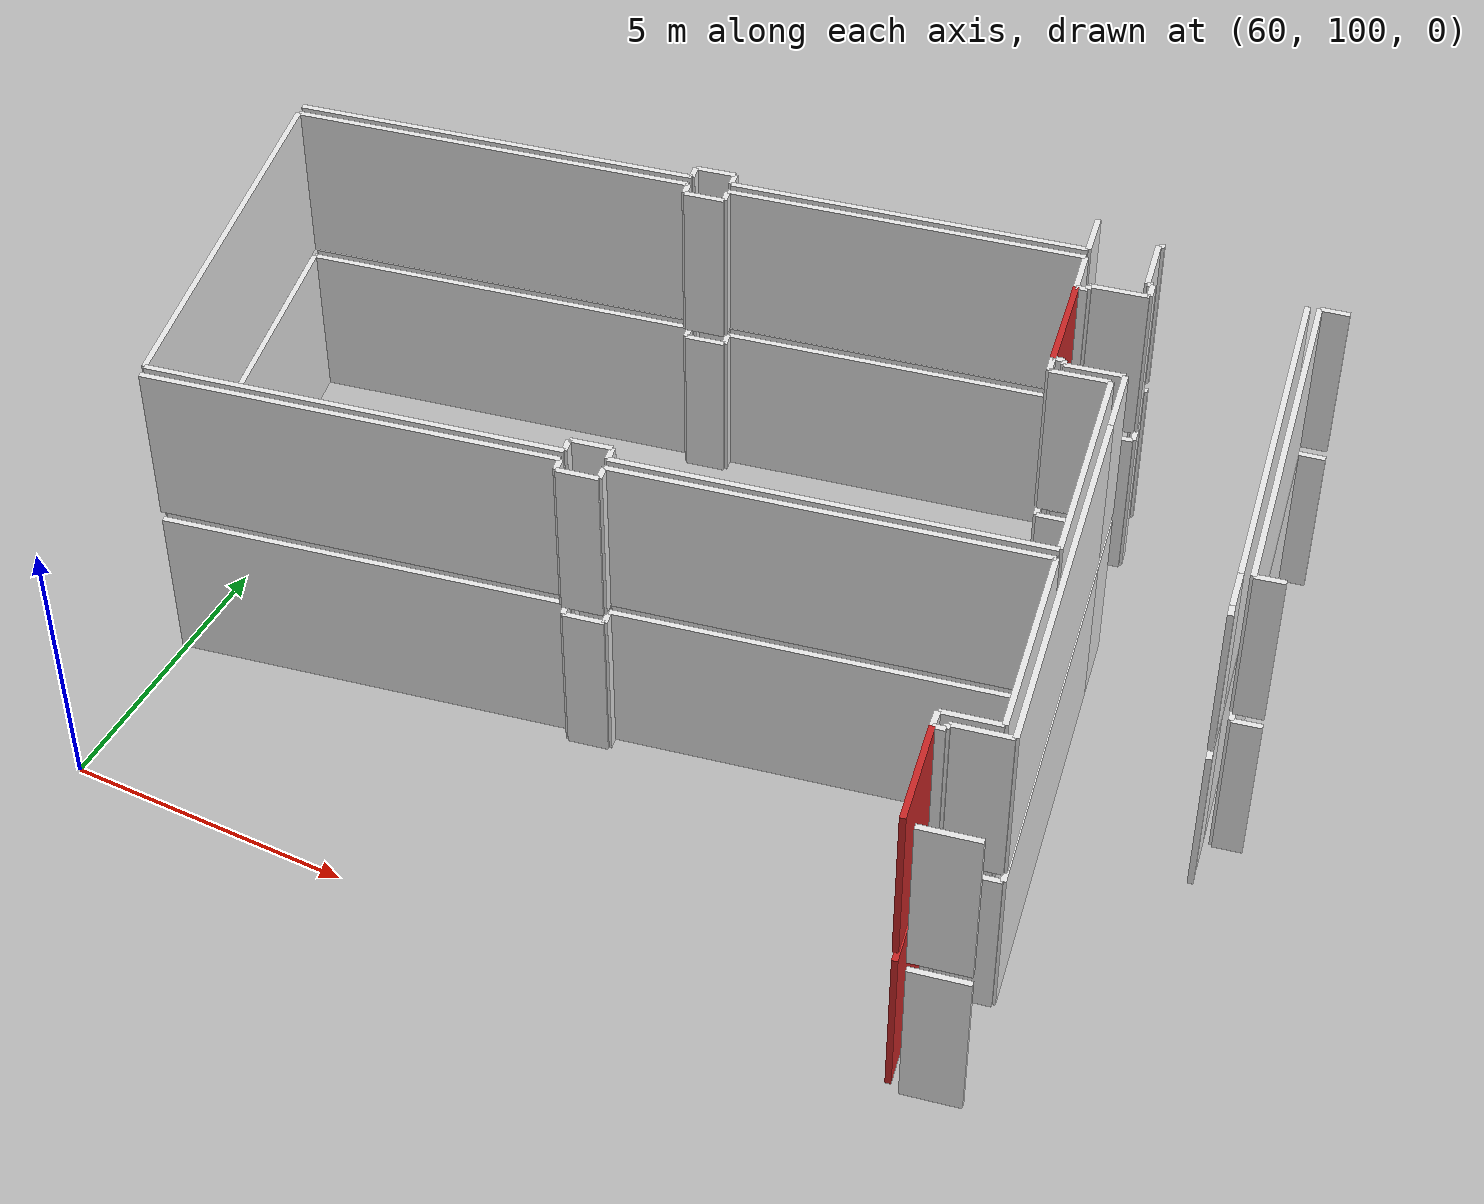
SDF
<sdf version="1.6">
 <world name="default">
  <model name="wall_72.4_111.0_0.0">
   <static>true</static>
   <pose>72.43499999999767 111.04000000003725 1.5 0 0 -1.3744936626731843</pose>
   <link name="link">
    <visual name="visual">
     <geometry><box><size>1.7944637079631676 0.1 3</size></box></geometry>
     <material>
      <script><uri>file://media/materials/scripts/gazebo.material</uri><name>Gazebo/Red</name></script>
     </material>
    </visual>
   </link>
  </model>
  <model name="wall_74.4_101.3_0.0">
   <static>true</static>
   <pose>74.38000000000466 101.26000000000931 1.5 0 0 -1.3690339825092397</pose>
   <link name="link">
    <visual name="visual">
     <geometry><box><size>1.796440926065282 0.1 3</size></box></geometry>
     <material>
      <script><uri>file://media/materials/scripts/gazebo.material</uri><name>Gazebo/Red</name></script>
     </material>
    </visual>
   </link>
  </model>
  <model name="wall_61.9_110.9_0.0">
   <static>true</static>
   <pose>61.945000000006985 110.9000000001397 1.5 0 0 0.1954353271142626</pose>
   <link name="link">
    <visual name="visual">
     <geometry><box><size>7.0033206409232305 0.1 3</size></box></geometry>
     <material>
      <script><uri>file://media/materials/scripts/gazebo.material</uri><name>Gazebo/White</name></script>
     </material>
    </visual>
   </link>
  </model>
  <model name="wall_65.4_111.7_0.0">
   <static>true</static>
   <pose>65.35500000001048 111.69999999995343 1.5 0 0 1.7761917161396261</pose>
   <link name="link">
    <visual name="visual">
     <geometry><box><size>0.24515301320319682 0.1 3</size></box></geometry>
     <material>
      <script><uri>file://media/materials/scripts/gazebo.material</uri><name>Gazebo/White</name></script>
     </material>
    </visual>
   </link>
  </model>
  <model name="wall_65.7_111.9_0.0">
   <static>true</static>
   <pose>65.6700000000128 111.88999999989755 1.5 0 0 0.20304521743943982</pose>
   <link name="link">
    <visual name="visual">
     <geometry><box><size>0.6942621983278424 0.1 3</size></box></geometry>
     <material>
      <script><uri>file://media/materials/scripts/gazebo.material</uri><name>Gazebo/White</name></script>
     </material>
    </visual>
   </link>
  </model>
  <model name="wall_66.0_111.8_0.0">
   <static>true</static>
   <pose>66.03500000000349 111.83499999996275 1.5 0 0 -1.373400766989791</pose>
   <link name="link">
    <visual name="visual">
     <geometry><box><size>0.25495097567735614 0.1 3</size></box></geometry>
     <material>
      <script><uri>file://media/materials/scripts/gazebo.material</uri><name>Gazebo/White</name></script>
     </material>
    </visual>
   </link>
  </model>
  <model name="wall_69.1_112.3_0.0">
   <static>true</static>
   <pose>69.05999999999767 112.30000000004657 1.5 0 0 0.19418838678074232</pose>
   <link name="link">
    <visual name="visual">
     <geometry><box><size>6.1149325425875 0.1 3</size></box></geometry>
     <material>
      <script><uri>file://media/materials/scripts/gazebo.material</uri><name>Gazebo/White</name></script>
     </material>
    </visual>
   </link>
  </model>
  <model name="wall_72.0_113.3_0.0">
   <static>true</static>
   <pose>71.98499999998603 113.28000000002794 1.5 0 0 1.760784614791112</pose>
   <link name="link">
    <visual name="visual">
     <geometry><box><size>0.7942921374956162 0.1 3</size></box></geometry>
     <material>
      <script><uri>file://media/materials/scripts/gazebo.material</uri><name>Gazebo/White</name></script>
     </material>
    </visual>
   </link>
  </model>
  <model name="wall_72.2_112.3_0.0">
   <static>true</static>
   <pose>72.17999999999302 112.30499999993481 1.5 0 0 1.7756730438677673</pose>
   <link name="link">
    <visual name="visual">
     <geometry><box><size>0.786447709666139 0.1 3</size></box></geometry>
     <material>
      <script><uri>file://media/materials/scripts/gazebo.material</uri><name>Gazebo/White</name></script>
     </material>
    </visual>
   </link>
  </model>
  <model name="wall_69.1_112.1_0.0">
   <static>true</static>
   <pose>69.09999999997672 112.0999999998603 1.5 0 0 -2.947404266809051</pose>
   <link name="link">
    <visual name="visual">
     <geometry><box><size>6.1149325425875 0.1 3</size></box></geometry>
     <material>
      <script><uri>file://media/materials/scripts/gazebo.material</uri><name>Gazebo/White</name></script>
     </material>
    </visual>
   </link>
  </model>
  <model name="wall_66.1_111.4_0.0">
   <static>true</static>
   <pose>66.125 111.38999999989755 1.5 0 0 -1.3654009372177238</pose>
   <link name="link">
    <visual name="visual">
     <geometry><box><size>0.24515301321506852 0.1 3</size></box></geometry>
     <material>
      <script><uri>file://media/materials/scripts/gazebo.material</uri><name>Gazebo/White</name></script>
     </material>
    </visual>
   </link>
  </model>
  <model name="wall_65.8_111.2_0.0">
   <static>true</static>
   <pose>65.80999999999767 111.2050000000745 1.5 0 0 -2.9526954728846198</pose>
   <link name="link">
    <visual name="visual">
     <geometry><box><size>0.6923149572561651 0.1 3</size></box></geometry>
     <material>
      <script><uri>file://media/materials/scripts/gazebo.material</uri><name>Gazebo/White</name></script>
     </material>
    </visual>
   </link>
  </model>
  <model name="wall_65.4_111.3_0.0">
   <static>true</static>
   <pose>65.44499999997788 111.26000000000931 1.5 0 0 1.7761917161396261</pose>
   <link name="link">
    <visual name="visual">
     <geometry><box><size>0.24515301320319682 0.1 3</size></box></geometry>
     <material>
      <script><uri>file://media/materials/scripts/gazebo.material</uri><name>Gazebo/White</name></script>
     </material>
    </visual>
   </link>
  </model>
  <model name="wall_62.0_110.7_0.0">
   <static>true</static>
   <pose>61.98499999998603 110.70499999984168 1.5 0 0 -2.9475584256050955</pose>
   <link name="link">
    <visual name="visual">
     <geometry><box><size>7.001385577168813 0.1 3</size></box></geometry>
     <material>
      <script><uri>file://media/materials/scripts/gazebo.material</uri><name>Gazebo/White</name></script>
     </material>
    </visual>
   </link>
  </model>
  <model name="wall_59.2_106.7_0.0">
   <static>true</static>
   <pose>59.20999999999185 106.70499999984168 1.5 0 0 -1.3748471066906804</pose>
   <link name="link">
    <visual name="visual">
     <geometry><box><size>6.779741882902312 0.1 3</size></box></geometry>
     <material>
      <script><uri>file://media/materials/scripts/gazebo.material</uri><name>Gazebo/White</name></script>
     </material>
    </visual>
   </link>
  </model>
  <model name="wall_63.3_104.1_0.0">
   <static>true</static>
   <pose>63.304999999993015 104.05499999993481 1.5 0 0 0.19403422798469777</pose>
   <link name="link">
    <visual name="visual">
     <geometry><box><size>7.001385577168813 0.1 3</size></box></geometry>
     <material>
      <script><uri>file://media/materials/scripts/gazebo.material</uri><name>Gazebo/White</name></script>
     </material>
    </visual>
   </link>
  </model>
  <model name="wall_66.7_104.9_0.0">
   <static>true</static>
   <pose>66.71499999999651 104.85499999998137 1.5 0 0 1.7681918866000021</pose>
   <link name="link">
    <visual name="visual">
     <geometry><box><size>0.25495097567735614 0.1 3</size></box></geometry>
     <material>
      <script><uri>file://media/materials/scripts/gazebo.material</uri><name>Gazebo/White</name></script>
     </material>
    </visual>
   </link>
  </model>
  <model name="wall_67.0_105.1_0.0">
   <static>true</static>
   <pose>67.03500000000349 105.05000000004657 1.5 0 0 0.20018106814672346</pose>
   <link name="link">
    <visual name="visual">
     <geometry><box><size>0.7040596565914858 0.1 3</size></box></geometry>
     <material>
      <script><uri>file://media/materials/scripts/gazebo.material</uri><name>Gazebo/White</name></script>
     </material>
    </visual>
   </link>
  </model>
  <model name="wall_67.4_105.0_0.0">
   <static>true</static>
   <pose>67.40499999999884 104.99500000011176 1.5 0 0 -1.373400766989791</pose>
   <link name="link">
    <visual name="visual">
     <geometry><box><size>0.25495097567735614 0.1 3</size></box></geometry>
     <material>
      <script><uri>file://media/materials/scripts/gazebo.material</uri><name>Gazebo/White</name></script>
     </material>
    </visual>
   </link>
  </model>
  <model name="wall_70.9_105.6_0.0">
   <static>true</static>
   <pose>70.9199999999837 105.56000000005588 1.5 0 0 0.19519049174407682</pose>
   <link name="link">
    <visual name="visual">
     <geometry><box><size>7.115110680757645 0.1 3</size></box></geometry>
     <material>
      <script><uri>file://media/materials/scripts/gazebo.material</uri><name>Gazebo/White</name></script>
     </material>
    </visual>
   </link>
  </model>
  <model name="wall_74.0_108.2_0.0">
   <static>true</static>
   <pose>74.02999999999884 108.15500000002794 1.5 0 0 1.7676870911146996</pose>
   <link name="link">
    <visual name="visual">
     <geometry><box><size>3.8850611321253985 0.1 3</size></box></geometry>
     <material>
      <script><uri>file://media/materials/scripts/gazebo.material</uri><name>Gazebo/White</name></script>
     </material>
    </visual>
   </link>
  </model>
  <model name="wall_73.2_110.0_0.0">
   <static>true</static>
   <pose>73.16000000000349 109.95999999996275 1.5 0 0 -2.9402755450405995</pose>
   <link name="link">
    <visual name="visual">
     <geometry><box><size>1.0001999800800263 0.1 3</size></box></geometry>
     <material>
      <script><uri>file://media/materials/scripts/gazebo.material</uri><name>Gazebo/White</name></script>
     </material>
    </visual>
   </link>
  </model>
  <model name="wall_72.6_110.0_0.0">
   <static>true</static>
   <pose>72.63999999998487 110.01000000000931 1.5 0 0 1.7681918864582145</pose>
   <link name="link">
    <visual name="visual">
     <geometry><box><size>0.30594117108908153 0.1 3</size></box></geometry>
     <material>
      <script><uri>file://media/materials/scripts/gazebo.material</uri><name>Gazebo/White</name></script>
     </material>
    </visual>
   </link>
  </model>
  <model name="wall_74.2_102.3_0.0">
   <static>true</static>
   <pose>74.17500000001746 102.29000000003725 1.5 0 0 1.7359450042724507</pose>
   <link name="link">
    <visual name="visual">
     <geometry><box><size>0.30413812632926696 0.1 3</size></box></geometry>
     <material>
      <script><uri>file://media/materials/scripts/gazebo.material</uri><name>Gazebo/White</name></script>
     </material>
    </visual>
   </link>
  </model>
  <model name="wall_74.6_102.5_0.0">
   <static>true</static>
   <pose>74.63500000000931 102.53499999991618 1.5 0 0 0.19342732666080192</pose>
   <link name="link">
    <visual name="visual">
     <geometry><box><size>0.9884331034139654 0.1 3</size></box></geometry>
     <material>
      <script><uri>file://media/materials/scripts/gazebo.material</uri><name>Gazebo/White</name></script>
     </material>
    </visual>
   </link>
  </model>
  <model name="wall_74.8_104.3_0.0">
   <static>true</static>
   <pose>74.77999999999884 104.33999999985099 1.5 0 0 1.7670670277288347</pose>
   <link name="link">
    <visual name="visual">
     <geometry><box><size>3.4869470887125433 0.1 3</size></box></geometry>
     <material>
      <script><uri>file://media/materials/scripts/gazebo.material</uri><name>Gazebo/White</name></script>
     </material>
    </visual>
   </link>
  </model>
  <model name="wall_71.0_105.4_0.0">
   <static>true</static>
   <pose>70.9549999999872 105.36499999999069 1.5 0 0 -2.9475101683600555</pose>
   <link name="link">
    <visual name="visual">
     <geometry><box><size>7.1033653995449395 0.1 3</size></box></geometry>
     <material>
      <script><uri>file://media/materials/scripts/gazebo.material</uri><name>Gazebo/White</name></script>
     </material>
    </visual>
   </link>
  </model>
  <model name="wall_67.5_104.6_0.0">
   <static>true</static>
   <pose>67.49499999999534 104.55500000016764 1.5 0 0 -1.3734007667659154</pose>
   <link name="link">
    <visual name="visual">
     <geometry><box><size>0.2549509756887716 0.1 3</size></box></geometry>
     <material>
      <script><uri>file://media/materials/scripts/gazebo.material</uri><name>Gazebo/White</name></script>
     </material>
    </visual>
   </link>
  </model>
  <model name="wall_67.2_104.4_0.0">
   <static>true</static>
   <pose>67.17500000001746 104.36499999999069 1.5 0 0 -2.9553698126839456</pose>
   <link name="link">
    <visual name="visual">
     <geometry><box><size>0.7021395873294909 0.1 3</size></box></geometry>
     <material>
      <script><uri>file://media/materials/scripts/gazebo.material</uri><name>Gazebo/White</name></script>
     </material>
    </visual>
   </link>
  </model>
  <model name="wall_66.8_104.4_0.0">
   <static>true</static>
   <pose>66.80500000002212 104.4199999999255 1.5 0 0 1.7761917157522207</pose>
   <link name="link">
    <visual name="visual">
     <geometry><box><size>0.24515301365907008 0.1 3</size></box></geometry>
     <material>
      <script><uri>file://media/materials/scripts/gazebo.material</uri><name>Gazebo/White</name></script>
     </material>
    </visual>
   </link>
  </model>
  <model name="wall_63.3_103.9_0.0">
   <static>true</static>
   <pose>63.345000000001164 103.86499999999069 1.5 0 0 -2.9475584256066987</pose>
   <link name="link">
    <visual name="visual">
     <geometry><box><size>7.001385577225929 0.1 3</size></box></geometry>
     <material>
      <script><uri>file://media/materials/scripts/gazebo.material</uri><name>Gazebo/White</name></script>
     </material>
    </visual>
   </link>
  </model>
  <model name="wall_76.2_113.3_0.0">
   <static>true</static>
   <pose>76.21499999999651 113.26500000013039 1.5 0 0 -2.9599438239016918</pose>
   <link name="link">
    <visual name="visual">
     <geometry><box><size>0.4981967483044168 0.1 3</size></box></geometry>
     <material>
      <script><uri>file://media/materials/scripts/gazebo.material</uri><name>Gazebo/White</name></script>
     </material>
    </visual>
   </link>
  </model>
  <model name="wall_76.6_110.1_0.0">
   <static>true</static>
   <pose>76.58499999999185 110.13500000000931 1.5 0 0 -1.3740242082667369</pose>
   <link name="link">
    <visual name="visual">
     <geometry><box><size>6.291406838293342 0.1 3</size></box></geometry>
     <material>
      <script><uri>file://media/materials/scripts/gazebo.material</uri><name>Gazebo/White</name></script>
     </material>
    </visual>
   </link>
  </model>
  <model name="wall_77.4_107.1_0.0">
   <static>true</static>
   <pose>77.44500000000698 107.0999999998603 1.5 0 0 0.2013171085608308</pose>
   <link name="link">
    <visual name="visual">
     <geometry><box><size>0.5000999900114971 0.1 3</size></box></geometry>
     <material>
      <script><uri>file://media/materials/scripts/gazebo.material</uri><name>Gazebo/White</name></script>
     </material>
    </visual>
   </link>
  </model>
  <model name="wall_75.3_100.4_0.0">
   <static>true</static>
   <pose>75.26000000000931 100.42500000004657 1.5 0 0 -2.950090935171577</pose>
   <link name="link">
    <visual name="visual">
     <geometry><box><size>0.9982484660355146 0.1 3</size></box></geometry>
     <material>
      <script><uri>file://media/materials/scripts/gazebo.material</uri><name>Gazebo/White</name></script>
     </material>
    </visual>
   </link>
  </model>
  <model name="wall_74.3_102.2_0.0">
   <static>true</static>
   <pose>74.30000000001746 102.16000000014901 1.5 0 0 0.19739556001778746</pose>
   <link name="link">
    <visual name="visual">
     <geometry><box><size>0.20396078056243275 0.1 3</size></box></geometry>
     <material>
      <script><uri>file://media/materials/scripts/gazebo.material</uri><name>Gazebo/White</name></script>
     </material>
    </visual>
   </link>
  </model>
  <model name="wall_74.4_102.2_0.0">
   <static>true</static>
   <pose>74.39000000001397 102.22999999998137 1.5 0 0 1.7681918875402798</pose>
   <link name="link">
    <visual name="visual">
     <geometry><box><size>0.10198038991021388 0.1 3</size></box></geometry>
     <material>
      <script><uri>file://media/materials/scripts/gazebo.material</uri><name>Gazebo/White</name></script>
     </material>
    </visual>
   </link>
  </model>
  <model name="wall_74.9_102.4_0.0">
   <static>true</static>
   <pose>74.86999999999534 102.375 1.5 0 0 0.19150171887616704</pose>
   <link name="link">
    <visual name="visual">
     <geometry><box><size>0.9982484661241455 0.1 3</size></box></geometry>
     <material>
      <script><uri>file://media/materials/scripts/gazebo.material</uri><name>Gazebo/White</name></script>
     </material>
    </visual>
   </link>
  </model>
  <model name="wall_74.7_105.8_0.0">
   <static>true</static>
   <pose>74.69500000000698 105.80000000004657 1.5 0 0 1.7679031196908237</pose>
   <link name="link">
    <visual name="visual">
     <geometry><box><size>6.791502042675887 0.1 3</size></box></geometry>
     <material>
      <script><uri>file://media/materials/scripts/gazebo.material</uri><name>Gazebo/White</name></script>
     </material>
    </visual>
   </link>
  </model>
  <model name="wall_73.9_109.7_0.0">
   <static>true</static>
   <pose>73.91500000000815 109.70999999996275 1.5 0 0 1.7665335133806872</pose>
   <link name="link">
    <visual name="visual">
     <geometry><box><size>1.1825819212062707 0.1 3</size></box></geometry>
     <material>
      <script><uri>file://media/materials/scripts/gazebo.material</uri><name>Gazebo/White</name></script>
     </material>
    </visual>
   </link>
  </model>
  <model name="wall_73.3_110.2_0.0">
   <static>true</static>
   <pose>73.30999999999767 110.18999999994412 1.5 0 0 -2.9402755450289626</pose>
   <link name="link">
    <visual name="visual">
     <geometry><box><size>1.0001999800229942 0.1 3</size></box></geometry>
     <material>
      <script><uri>file://media/materials/scripts/gazebo.material</uri><name>Gazebo/White</name></script>
     </material>
    </visual>
   </link>
  </model>
  <model name="wall_72.8_110.1_0.0">
   <static>true</static>
   <pose>72.80999999999767 110.13999999989755 1.5 0 0 1.7681918866447774</pose>
   <link name="link">
    <visual name="visual">
     <geometry><box><size>0.10198039036683233 0.1 3</size></box></geometry>
     <material>
      <script><uri>file://media/materials/scripts/gazebo.material</uri><name>Gazebo/White</name></script>
     </material>
    </visual>
   </link>
  </model>
  <model name="wall_72.7_110.2_0.0">
   <static>true</static>
   <pose>72.7049999999872 110.17500000004657 1.5 0 0 -2.9849907776618085</pose>
   <link name="link">
    <visual name="visual">
     <geometry><box><size>0.19235384058705793 0.1 3</size></box></geometry>
     <material>
      <script><uri>file://media/materials/scripts/gazebo.material</uri><name>Gazebo/White</name></script>
     </material>
    </visual>
   </link>
  </model>
  <model name="wall_72.4_111.9_0.0">
   <static>true</static>
   <pose>72.35500000001048 111.93500000005588 1.5 0 0 0.15660187831921837</pose>
   <link name="link">
    <visual name="visual">
     <geometry><box><size>0.19235384065968367 0.1 3</size></box></geometry>
     <material>
      <script><uri>file://media/materials/scripts/gazebo.material</uri><name>Gazebo/White</name></script>
     </material>
    </visual>
   </link>
  </model>
  <model name="wall_72.4_112.0_0.0">
   <static>true</static>
   <pose>72.44000000000233 112.0 1.5 0 0 1.7681918875402798</pose>
   <link name="link">
    <visual name="visual">
     <geometry><box><size>0.10198038991021388 0.1 3</size></box></geometry>
     <material>
      <script><uri>file://media/materials/scripts/gazebo.material</uri><name>Gazebo/White</name></script>
     </material>
    </visual>
   </link>
  </model>
  <model name="wall_72.9_112.1_0.0">
   <static>true</static>
   <pose>72.9199999999837 112.14999999990687 1.5 0 0 0.2013171085608308</pose>
   <link name="link">
    <visual name="visual">
     <geometry><box><size>1.0001999800229942 0.1 3</size></box></geometry>
     <material>
      <script><uri>file://media/materials/scripts/gazebo.material</uri><name>Gazebo/White</name></script>
     </material>
    </visual>
   </link>
  </model>
  <model name="wall_73.4_112.4_0.0">
   <static>true</static>
   <pose>73.37999999997555 112.39500000001863 1.5 0 0 1.7748143063542596</pose>
   <link name="link">
    <visual name="visual">
     <geometry><box><size>0.2961418579352255 0.1 3</size></box></geometry>
     <material>
      <script><uri>file://media/materials/scripts/gazebo.material</uri><name>Gazebo/White</name></script>
     </material>
    </visual>
   </link>
  </model>
  <model name="wall_73.3_112.5_0.0">
   <static>true</static>
   <pose>73.30499999999302 112.53000000002794 1.5 0 0 -2.922923707441933</pose>
   <link name="link">
    <visual name="visual">
     <geometry><box><size>0.09219544454514944 0.1 3</size></box></geometry>
     <material>
      <script><uri>file://media/materials/scripts/gazebo.material</uri><name>Gazebo/White</name></script>
     </material>
    </visual>
   </link>
  </model>
  <model name="wall_73.2_113.0_0.0">
   <static>true</static>
   <pose>73.16000000000349 113.01000000000931 1.5 0 0 1.7721134351846652</pose>
   <link name="link">
    <visual name="visual">
     <geometry><box><size>1.0001999799880765 0.1 3</size></box></geometry>
     <material>
      <script><uri>file://media/materials/scripts/gazebo.material</uri><name>Gazebo/White</name></script>
     </material>
    </visual>
   </link>
  </model>
  <model name="wall_73.1_113.5_0.0">
   <static>true</static>
   <pose>73.10999999998603 113.51000000000931 1.5 0 0 0.1973955600737564</pose>
   <link name="link">
    <visual name="visual">
     <geometry><box><size>0.10198039025267772 0.1 3</size></box></geometry>
     <material>
      <script><uri>file://media/materials/scripts/gazebo.material</uri><name>Gazebo/White</name></script>
     </material>
    </visual>
   </link>
  </model>
  <model name="wall_76.4_110.1_0.0">
   <static>true</static>
   <pose>76.39500000001863 110.10000000009313 1.5 0 0 -1.3737129742480756</pose>
   <link name="link">
    <visual name="visual">
     <geometry><box><size>6.281600114762957 0.1 3</size></box></geometry>
     <material>
      <script><uri>file://media/materials/scripts/gazebo.material</uri><name>Gazebo/White</name></script>
     </material>
    </visual>
   </link>
  </model>
  <model name="wall_77.1_106.7_0.0">
   <static>true</static>
   <pose>77.07500000001164 106.67999999993481 1.5 0 0 -1.3818991459561358</pose>
   <link name="link">
    <visual name="visual">
     <geometry><box><size>0.6923149573923696 0.1 3</size></box></geometry>
     <material>
      <script><uri>file://media/materials/scripts/gazebo.material</uri><name>Gazebo/White</name></script>
     </material>
    </visual>
   </link>
  </model>
  <model name="wall_77.2_106.2_0.0">
   <static>true</static>
   <pose>77.16500000000815 106.23499999986961 1.5 0 0 -1.337053145938486</pose>
   <link name="link">
    <visual name="visual">
     <geometry><box><size>0.21587033141029277 0.1 3</size></box></geometry>
     <material>
      <script><uri>file://media/materials/scripts/gazebo.material</uri><name>Gazebo/White</name></script>
     </material>
    </visual>
   </link>
  </model>
  <model name="wall_72.4_111.0_3.2">
   <static>true</static>
   <pose>72.43499999999767 111.04000000003725 4.7 0 0 -1.3744936626731843</pose>
   <link name="link">
    <visual name="visual">
     <geometry><box><size>1.7944637079631676 0.1 3</size></box></geometry>
     <material>
      <script><uri>file://media/materials/scripts/gazebo.material</uri><name>Gazebo/Red</name></script>
     </material>
    </visual>
   </link>
  </model>
  <model name="wall_74.4_101.3_3.2">
   <static>true</static>
   <pose>74.38000000000466 101.26000000000931 4.7 0 0 -1.3690339825092397</pose>
   <link name="link">
    <visual name="visual">
     <geometry><box><size>1.796440926065282 0.1 3</size></box></geometry>
     <material>
      <script><uri>file://media/materials/scripts/gazebo.material</uri><name>Gazebo/Red</name></script>
     </material>
    </visual>
   </link>
  </model>
  <model name="wall_61.9_110.9_3.2">
   <static>true</static>
   <pose>61.945000000006985 110.9000000001397 4.7 0 0 0.1954353271142626</pose>
   <link name="link">
    <visual name="visual">
     <geometry><box><size>7.0033206409232305 0.1 3</size></box></geometry>
     <material>
      <script><uri>file://media/materials/scripts/gazebo.material</uri><name>Gazebo/White</name></script>
     </material>
    </visual>
   </link>
  </model>
  <model name="wall_65.4_111.7_3.2">
   <static>true</static>
   <pose>65.35500000001048 111.69999999995343 4.7 0 0 1.7761917161396261</pose>
   <link name="link">
    <visual name="visual">
     <geometry><box><size>0.24515301320319682 0.1 3</size></box></geometry>
     <material>
      <script><uri>file://media/materials/scripts/gazebo.material</uri><name>Gazebo/White</name></script>
     </material>
    </visual>
   </link>
  </model>
  <model name="wall_65.7_111.9_3.2">
   <static>true</static>
   <pose>65.6700000000128 111.88999999989755 4.7 0 0 0.20304521743943982</pose>
   <link name="link">
    <visual name="visual">
     <geometry><box><size>0.6942621983278424 0.1 3</size></box></geometry>
     <material>
      <script><uri>file://media/materials/scripts/gazebo.material</uri><name>Gazebo/White</name></script>
     </material>
    </visual>
   </link>
  </model>
  <model name="wall_66.0_111.8_3.2">
   <static>true</static>
   <pose>66.03500000000349 111.83499999996275 4.7 0 0 -1.373400766989791</pose>
   <link name="link">
    <visual name="visual">
     <geometry><box><size>0.25495097567735614 0.1 3</size></box></geometry>
     <material>
      <script><uri>file://media/materials/scripts/gazebo.material</uri><name>Gazebo/White</name></script>
     </material>
    </visual>
   </link>
  </model>
  <model name="wall_69.1_112.3_3.2">
   <static>true</static>
   <pose>69.05999999999767 112.30000000004657 4.7 0 0 0.19418838678074232</pose>
   <link name="link">
    <visual name="visual">
     <geometry><box><size>6.1149325425875 0.1 3</size></box></geometry>
     <material>
      <script><uri>file://media/materials/scripts/gazebo.material</uri><name>Gazebo/White</name></script>
     </material>
    </visual>
   </link>
  </model>
  <model name="wall_72.0_113.3_3.2">
   <static>true</static>
   <pose>71.98499999998603 113.28000000002794 4.7 0 0 1.760784614791112</pose>
   <link name="link">
    <visual name="visual">
     <geometry><box><size>0.7942921374956162 0.1 3</size></box></geometry>
     <material>
      <script><uri>file://media/materials/scripts/gazebo.material</uri><name>Gazebo/White</name></script>
     </material>
    </visual>
   </link>
  </model>
  <model name="wall_72.2_112.3_3.2">
   <static>true</static>
   <pose>72.17999999999302 112.30499999993481 4.7 0 0 1.7756730438677673</pose>
   <link name="link">
    <visual name="visual">
     <geometry><box><size>0.786447709666139 0.1 3</size></box></geometry>
     <material>
      <script><uri>file://media/materials/scripts/gazebo.material</uri><name>Gazebo/White</name></script>
     </material>
    </visual>
   </link>
  </model>
  <model name="wall_69.1_112.1_3.2">
   <static>true</static>
   <pose>69.09999999997672 112.0999999998603 4.7 0 0 -2.947404266809051</pose>
   <link name="link">
    <visual name="visual">
     <geometry><box><size>6.1149325425875 0.1 3</size></box></geometry>
     <material>
      <script><uri>file://media/materials/scripts/gazebo.material</uri><name>Gazebo/White</name></script>
     </material>
    </visual>
   </link>
  </model>
  <model name="wall_66.1_111.4_3.2">
   <static>true</static>
   <pose>66.125 111.38999999989755 4.7 0 0 -1.3654009372177238</pose>
   <link name="link">
    <visual name="visual">
     <geometry><box><size>0.24515301321506852 0.1 3</size></box></geometry>
     <material>
      <script><uri>file://media/materials/scripts/gazebo.material</uri><name>Gazebo/White</name></script>
     </material>
    </visual>
   </link>
  </model>
  <model name="wall_65.8_111.2_3.2">
   <static>true</static>
   <pose>65.80999999999767 111.2050000000745 4.7 0 0 -2.9526954728846198</pose>
   <link name="link">
    <visual name="visual">
     <geometry><box><size>0.6923149572561651 0.1 3</size></box></geometry>
     <material>
      <script><uri>file://media/materials/scripts/gazebo.material</uri><name>Gazebo/White</name></script>
     </material>
    </visual>
   </link>
  </model>
  <model name="wall_65.4_111.3_3.2">
   <static>true</static>
   <pose>65.44499999997788 111.26000000000931 4.7 0 0 1.7761917161396261</pose>
   <link name="link">
    <visual name="visual">
     <geometry><box><size>0.24515301320319682 0.1 3</size></box></geometry>
     <material>
      <script><uri>file://media/materials/scripts/gazebo.material</uri><name>Gazebo/White</name></script>
     </material>
    </visual>
   </link>
  </model>
  <model name="wall_62.0_110.7_3.2">
   <static>true</static>
   <pose>61.98499999998603 110.70499999984168 4.7 0 0 -2.9475584256050955</pose>
   <link name="link">
    <visual name="visual">
     <geometry><box><size>7.001385577168813 0.1 3</size></box></geometry>
     <material>
      <script><uri>file://media/materials/scripts/gazebo.material</uri><name>Gazebo/White</name></script>
     </material>
    </visual>
   </link>
  </model>
  <model name="wall_59.2_106.7_3.2">
   <static>true</static>
   <pose>59.20999999999185 106.70499999984168 4.7 0 0 -1.3748471066906804</pose>
   <link name="link">
    <visual name="visual">
     <geometry><box><size>6.779741882902312 0.1 3</size></box></geometry>
     <material>
      <script><uri>file://media/materials/scripts/gazebo.material</uri><name>Gazebo/White</name></script>
     </material>
    </visual>
   </link>
  </model>
  <model name="wall_63.3_104.1_3.2">
   <static>true</static>
   <pose>63.304999999993015 104.05499999993481 4.7 0 0 0.19403422798469777</pose>
   <link name="link">
    <visual name="visual">
     <geometry><box><size>7.001385577168813 0.1 3</size></box></geometry>
     <material>
      <script><uri>file://media/materials/scripts/gazebo.material</uri><name>Gazebo/White</name></script>
     </material>
    </visual>
   </link>
  </model>
  <model name="wall_66.7_104.9_3.2">
   <static>true</static>
   <pose>66.71499999999651 104.85499999998137 4.7 0 0 1.7681918866000021</pose>
   <link name="link">
    <visual name="visual">
     <geometry><box><size>0.25495097567735614 0.1 3</size></box></geometry>
     <material>
      <script><uri>file://media/materials/scripts/gazebo.material</uri><name>Gazebo/White</name></script>
     </material>
    </visual>
   </link>
  </model>
  <model name="wall_67.0_105.1_3.2">
   <static>true</static>
   <pose>67.03500000000349 105.05000000004657 4.7 0 0 0.20018106814672346</pose>
   <link name="link">
    <visual name="visual">
     <geometry><box><size>0.7040596565914858 0.1 3</size></box></geometry>
     <material>
      <script><uri>file://media/materials/scripts/gazebo.material</uri><name>Gazebo/White</name></script>
     </material>
    </visual>
   </link>
  </model>
  <model name="wall_67.4_105.0_3.2">
   <static>true</static>
   <pose>67.40499999999884 104.99500000011176 4.7 0 0 -1.373400766989791</pose>
   <link name="link">
    <visual name="visual">
     <geometry><box><size>0.25495097567735614 0.1 3</size></box></geometry>
     <material>
      <script><uri>file://media/materials/scripts/gazebo.material</uri><name>Gazebo/White</name></script>
     </material>
    </visual>
   </link>
  </model>
  <model name="wall_70.9_105.6_3.2">
   <static>true</static>
   <pose>70.9199999999837 105.56000000005588 4.7 0 0 0.19519049174407682</pose>
   <link name="link">
    <visual name="visual">
     <geometry><box><size>7.115110680757645 0.1 3</size></box></geometry>
     <material>
      <script><uri>file://media/materials/scripts/gazebo.material</uri><name>Gazebo/White</name></script>
     </material>
    </visual>
   </link>
  </model>
  <model name="wall_74.0_108.2_3.2">
   <static>true</static>
   <pose>74.02999999999884 108.15500000002794 4.7 0 0 1.7676870911146996</pose>
   <link name="link">
    <visual name="visual">
     <geometry><box><size>3.8850611321253985 0.1 3</size></box></geometry>
     <material>
      <script><uri>file://media/materials/scripts/gazebo.material</uri><name>Gazebo/White</name></script>
     </material>
    </visual>
   </link>
  </model>
  <model name="wall_73.2_110.0_3.2">
   <static>true</static>
   <pose>73.16000000000349 109.95999999996275 4.7 0 0 -2.9402755450405995</pose>
   <link name="link">
    <visual name="visual">
     <geometry><box><size>1.0001999800800263 0.1 3</size></box></geometry>
     <material>
      <script><uri>file://media/materials/scripts/gazebo.material</uri><name>Gazebo/White</name></script>
     </material>
    </visual>
   </link>
  </model>
  <model name="wall_72.6_110.0_3.2">
   <static>true</static>
   <pose>72.63999999998487 110.01000000000931 4.7 0 0 1.7681918864582145</pose>
   <link name="link">
    <visual name="visual">
     <geometry><box><size>0.30594117108908153 0.1 3</size></box></geometry>
     <material>
      <script><uri>file://media/materials/scripts/gazebo.material</uri><name>Gazebo/White</name></script>
     </material>
    </visual>
   </link>
  </model>
  <model name="wall_74.2_102.3_3.2">
   <static>true</static>
   <pose>74.17500000001746 102.29000000003725 4.7 0 0 1.7359450042724507</pose>
   <link name="link">
    <visual name="visual">
     <geometry><box><size>0.30413812632926696 0.1 3</size></box></geometry>
     <material>
      <script><uri>file://media/materials/scripts/gazebo.material</uri><name>Gazebo/White</name></script>
     </material>
    </visual>
   </link>
  </model>
  <model name="wall_74.6_102.5_3.2">
   <static>true</static>
   <pose>74.63500000000931 102.53499999991618 4.7 0 0 0.19342732666080192</pose>
   <link name="link">
    <visual name="visual">
     <geometry><box><size>0.9884331034139654 0.1 3</size></box></geometry>
     <material>
      <script><uri>file://media/materials/scripts/gazebo.material</uri><name>Gazebo/White</name></script>
     </material>
    </visual>
   </link>
  </model>
  <model name="wall_74.8_104.3_3.2">
   <static>true</static>
   <pose>74.77999999999884 104.33999999985099 4.7 0 0 1.7670670277288347</pose>
   <link name="link">
    <visual name="visual">
     <geometry><box><size>3.4869470887125433 0.1 3</size></box></geometry>
     <material>
      <script><uri>file://media/materials/scripts/gazebo.material</uri><name>Gazebo/White</name></script>
     </material>
    </visual>
   </link>
  </model>
  <model name="wall_71.0_105.4_3.2">
   <static>true</static>
   <pose>70.9549999999872 105.36499999999069 4.7 0 0 -2.9475101683600555</pose>
   <link name="link">
    <visual name="visual">
     <geometry><box><size>7.1033653995449395 0.1 3</size></box></geometry>
     <material>
      <script><uri>file://media/materials/scripts/gazebo.material</uri><name>Gazebo/White</name></script>
     </material>
    </visual>
   </link>
  </model>
  <model name="wall_67.5_104.6_3.2">
   <static>true</static>
   <pose>67.49499999999534 104.55500000016764 4.7 0 0 -1.3734007667659154</pose>
   <link name="link">
    <visual name="visual">
     <geometry><box><size>0.2549509756887716 0.1 3</size></box></geometry>
     <material>
      <script><uri>file://media/materials/scripts/gazebo.material</uri><name>Gazebo/White</name></script>
     </material>
    </visual>
   </link>
  </model>
  <model name="wall_67.2_104.4_3.2">
   <static>true</static>
   <pose>67.17500000001746 104.36499999999069 4.7 0 0 -2.9553698126839456</pose>
   <link name="link">
    <visual name="visual">
     <geometry><box><size>0.7021395873294909 0.1 3</size></box></geometry>
     <material>
      <script><uri>file://media/materials/scripts/gazebo.material</uri><name>Gazebo/White</name></script>
     </material>
    </visual>
   </link>
  </model>
  <model name="wall_66.8_104.4_3.2">
   <static>true</static>
   <pose>66.80500000002212 104.4199999999255 4.7 0 0 1.7761917157522207</pose>
   <link name="link">
    <visual name="visual">
     <geometry><box><size>0.24515301365907008 0.1 3</size></box></geometry>
     <material>
      <script><uri>file://media/materials/scripts/gazebo.material</uri><name>Gazebo/White</name></script>
     </material>
    </visual>
   </link>
  </model>
  <model name="wall_63.3_103.9_3.2">
   <static>true</static>
   <pose>63.345000000001164 103.86499999999069 4.7 0 0 -2.9475584256066987</pose>
   <link name="link">
    <visual name="visual">
     <geometry><box><size>7.001385577225929 0.1 3</size></box></geometry>
     <material>
      <script><uri>file://media/materials/scripts/gazebo.material</uri><name>Gazebo/White</name></script>
     </material>
    </visual>
   </link>
  </model>
  <model name="wall_76.2_113.3_3.2">
   <static>true</static>
   <pose>76.21499999999651 113.26500000013039 4.7 0 0 -2.9599438239016918</pose>
   <link name="link">
    <visual name="visual">
     <geometry><box><size>0.4981967483044168 0.1 3</size></box></geometry>
     <material>
      <script><uri>file://media/materials/scripts/gazebo.material</uri><name>Gazebo/White</name></script>
     </material>
    </visual>
   </link>
  </model>
  <model name="wall_76.6_110.1_3.2">
   <static>true</static>
   <pose>76.58499999999185 110.13500000000931 4.7 0 0 -1.3740242082667369</pose>
   <link name="link">
    <visual name="visual">
     <geometry><box><size>6.291406838293342 0.1 3</size></box></geometry>
     <material>
      <script><uri>file://media/materials/scripts/gazebo.material</uri><name>Gazebo/White</name></script>
     </material>
    </visual>
   </link>
  </model>
  <model name="wall_77.4_107.1_3.2">
   <static>true</static>
   <pose>77.44500000000698 107.0999999998603 4.7 0 0 0.2013171085608308</pose>
   <link name="link">
    <visual name="visual">
     <geometry><box><size>0.5000999900114971 0.1 3</size></box></geometry>
     <material>
      <script><uri>file://media/materials/scripts/gazebo.material</uri><name>Gazebo/White</name></script>
     </material>
    </visual>
   </link>
  </model>
  <model name="wall_75.3_100.4_3.2">
   <static>true</static>
   <pose>75.26000000000931 100.42500000004657 4.7 0 0 -2.950090935171577</pose>
   <link name="link">
    <visual name="visual">
     <geometry><box><size>0.9982484660355146 0.1 3</size></box></geometry>
     <material>
      <script><uri>file://media/materials/scripts/gazebo.material</uri><name>Gazebo/White</name></script>
     </material>
    </visual>
   </link>
  </model>
  <model name="wall_74.3_102.2_3.2">
   <static>true</static>
   <pose>74.30000000001746 102.16000000014901 4.7 0 0 0.19739556001778746</pose>
   <link name="link">
    <visual name="visual">
     <geometry><box><size>0.20396078056243275 0.1 3</size></box></geometry>
     <material>
      <script><uri>file://media/materials/scripts/gazebo.material</uri><name>Gazebo/White</name></script>
     </material>
    </visual>
   </link>
  </model>
  <model name="wall_74.4_102.2_3.2">
   <static>true</static>
   <pose>74.39000000001397 102.22999999998137 4.7 0 0 1.7681918875402798</pose>
   <link name="link">
    <visual name="visual">
     <geometry><box><size>0.10198038991021388 0.1 3</size></box></geometry>
     <material>
      <script><uri>file://media/materials/scripts/gazebo.material</uri><name>Gazebo/White</name></script>
     </material>
    </visual>
   </link>
  </model>
  <model name="wall_74.9_102.4_3.2">
   <static>true</static>
   <pose>74.86999999999534 102.375 4.7 0 0 0.19150171887616704</pose>
   <link name="link">
    <visual name="visual">
     <geometry><box><size>0.9982484661241455 0.1 3</size></box></geometry>
     <material>
      <script><uri>file://media/materials/scripts/gazebo.material</uri><name>Gazebo/White</name></script>
     </material>
    </visual>
   </link>
  </model>
  <model name="wall_74.7_105.8_3.2">
   <static>true</static>
   <pose>74.69500000000698 105.80000000004657 4.7 0 0 1.7679031196908237</pose>
   <link name="link">
    <visual name="visual">
     <geometry><box><size>6.791502042675887 0.1 3</size></box></geometry>
     <material>
      <script><uri>file://media/materials/scripts/gazebo.material</uri><name>Gazebo/White</name></script>
     </material>
    </visual>
   </link>
  </model>
  <model name="wall_73.9_109.7_3.2">
   <static>true</static>
   <pose>73.91500000000815 109.70999999996275 4.7 0 0 1.7665335133806872</pose>
   <link name="link">
    <visual name="visual">
     <geometry><box><size>1.1825819212062707 0.1 3</size></box></geometry>
     <material>
      <script><uri>file://media/materials/scripts/gazebo.material</uri><name>Gazebo/White</name></script>
     </material>
    </visual>
   </link>
  </model>
  <model name="wall_73.3_110.2_3.2">
   <static>true</static>
   <pose>73.30999999999767 110.18999999994412 4.7 0 0 -2.9402755450289626</pose>
   <link name="link">
    <visual name="visual">
     <geometry><box><size>1.0001999800229942 0.1 3</size></box></geometry>
     <material>
      <script><uri>file://media/materials/scripts/gazebo.material</uri><name>Gazebo/White</name></script>
     </material>
    </visual>
   </link>
  </model>
  <model name="wall_72.8_110.1_3.2">
   <static>true</static>
   <pose>72.80999999999767 110.13999999989755 4.7 0 0 1.7681918866447774</pose>
   <link name="link">
    <visual name="visual">
     <geometry><box><size>0.10198039036683233 0.1 3</size></box></geometry>
     <material>
      <script><uri>file://media/materials/scripts/gazebo.material</uri><name>Gazebo/White</name></script>
     </material>
    </visual>
   </link>
  </model>
  <model name="wall_72.7_110.2_3.2">
   <static>true</static>
   <pose>72.7049999999872 110.17500000004657 4.7 0 0 -2.9849907776618085</pose>
   <link name="link">
    <visual name="visual">
     <geometry><box><size>0.19235384058705793 0.1 3</size></box></geometry>
     <material>
      <script><uri>file://media/materials/scripts/gazebo.material</uri><name>Gazebo/White</name></script>
     </material>
    </visual>
   </link>
  </model>
  <model name="wall_72.4_111.9_3.2">
   <static>true</static>
   <pose>72.35500000001048 111.93500000005588 4.7 0 0 0.15660187831921837</pose>
   <link name="link">
    <visual name="visual">
     <geometry><box><size>0.19235384065968367 0.1 3</size></box></geometry>
     <material>
      <script><uri>file://media/materials/scripts/gazebo.material</uri><name>Gazebo/White</name></script>
     </material>
    </visual>
   </link>
  </model>
  <model name="wall_72.4_112.0_3.2">
   <static>true</static>
   <pose>72.44000000000233 112.0 4.7 0 0 1.7681918875402798</pose>
   <link name="link">
    <visual name="visual">
     <geometry><box><size>0.10198038991021388 0.1 3</size></box></geometry>
     <material>
      <script><uri>file://media/materials/scripts/gazebo.material</uri><name>Gazebo/White</name></script>
     </material>
    </visual>
   </link>
  </model>
  <model name="wall_72.9_112.1_3.2">
   <static>true</static>
   <pose>72.9199999999837 112.14999999990687 4.7 0 0 0.2013171085608308</pose>
   <link name="link">
    <visual name="visual">
     <geometry><box><size>1.0001999800229942 0.1 3</size></box></geometry>
     <material>
      <script><uri>file://media/materials/scripts/gazebo.material</uri><name>Gazebo/White</name></script>
     </material>
    </visual>
   </link>
  </model>
  <model name="wall_73.4_112.4_3.2">
   <static>true</static>
   <pose>73.37999999997555 112.39500000001863 4.7 0 0 1.7748143063542596</pose>
   <link name="link">
    <visual name="visual">
     <geometry><box><size>0.2961418579352255 0.1 3</size></box></geometry>
     <material>
      <script><uri>file://media/materials/scripts/gazebo.material</uri><name>Gazebo/White</name></script>
     </material>
    </visual>
   </link>
  </model>
  <model name="wall_73.3_112.5_3.2">
   <static>true</static>
   <pose>73.30499999999302 112.53000000002794 4.7 0 0 -2.922923707441933</pose>
   <link name="link">
    <visual name="visual">
     <geometry><box><size>0.09219544454514944 0.1 3</size></box></geometry>
     <material>
      <script><uri>file://media/materials/scripts/gazebo.material</uri><name>Gazebo/White</name></script>
     </material>
    </visual>
   </link>
  </model>
  <model name="wall_73.2_113.0_3.2">
   <static>true</static>
   <pose>73.16000000000349 113.01000000000931 4.7 0 0 1.7721134351846652</pose>
   <link name="link">
    <visual name="visual">
     <geometry><box><size>1.0001999799880765 0.1 3</size></box></geometry>
     <material>
      <script><uri>file://media/materials/scripts/gazebo.material</uri><name>Gazebo/White</name></script>
     </material>
    </visual>
   </link>
  </model>
  <model name="wall_73.1_113.5_3.2">
   <static>true</static>
   <pose>73.10999999998603 113.51000000000931 4.7 0 0 0.1973955600737564</pose>
   <link name="link">
    <visual name="visual">
     <geometry><box><size>0.10198039025267772 0.1 3</size></box></geometry>
     <material>
      <script><uri>file://media/materials/scripts/gazebo.material</uri><name>Gazebo/White</name></script>
     </material>
    </visual>
   </link>
  </model>
  <model name="wall_76.4_110.1_3.2">
   <static>true</static>
   <pose>76.39500000001863 110.10000000009313 4.7 0 0 -1.3737129742480756</pose>
   <link name="link">
    <visual name="visual">
     <geometry><box><size>6.281600114762957 0.1 3</size></box></geometry>
     <material>
      <script><uri>file://media/materials/scripts/gazebo.material</uri><name>Gazebo/White</name></script>
     </material>
    </visual>
   </link>
  </model>
  <model name="wall_77.1_106.7_3.2">
   <static>true</static>
   <pose>77.07500000001164 106.67999999993481 4.7 0 0 -1.3818991459561358</pose>
   <link name="link">
    <visual name="visual">
     <geometry><box><size>0.6923149573923696 0.1 3</size></box></geometry>
     <material>
      <script><uri>file://media/materials/scripts/gazebo.material</uri><name>Gazebo/White</name></script>
     </material>
    </visual>
   </link>
  </model>
  <model name="wall_77.2_106.2_3.2">
   <static>true</static>
   <pose>77.16500000000815 106.23499999986961 4.7 0 0 -1.337053145938486</pose>
   <link name="link">
    <visual name="visual">
     <geometry><box><size>0.21587033141029277 0.1 3</size></box></geometry>
     <material>
      <script><uri>file://media/materials/scripts/gazebo.material</uri><name>Gazebo/White</name></script>
     </material>
    </visual>
   </link>
  </model>
 </world>
</sdf>
